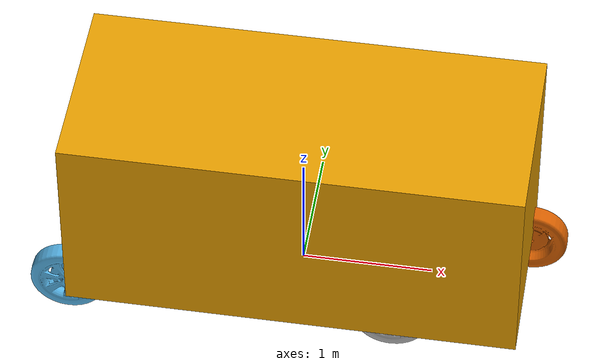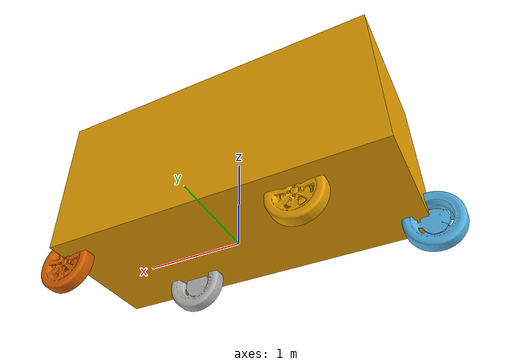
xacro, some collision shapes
<?xml version="1.0"?>
<robot name="atlascar2" xmlns:xacro="http://www.ros.org/wiki/xacro">
<!--
Robot model taken from http://wiki.ros.org/pr2_mechanism/Tutorials/SImple%20URDF-Controller%20Example
-->
  <xacro:include filename="atlascar2_wheel.urdf.xacro"/>

  <xacro:property name="deg_to_rad" value="0.01745329251994329577"/>

  <!-- Constants for robot dimensions -->
  <xacro:property name="length" value="3.475" />
  <xacro:property name="width" value="1.475" />
  <xacro:property name="height" value="1.61"/>
  <xacro:property name="wheel_radius" value="0.285" /> <!-- Link 1 -->
  <xacro:property name="thickness" value="0.145" /> <!-- Link 2 -->
<!--  we need two because the car isn't a square-->
  <xacro:property name="axel_offset_x" value="0.5" /> <!-- Space btw top of beam and the each joint -->
  <xacro:property name="axel_offset_y" value="0" /> <!-- Space btw top of beam and the each joint -->
  <xacro:property name="steer_offset" value="0.02" /> <!-- Link 1 -->

  <!-- Links: inertial,visual,collision -->
  <link name="base_link">
    <inertial>
      <!-- origin is relative -->
      <origin xyz="0 0 0" rpy="0 0 0"/>
      <mass value="2"/>
      <inertia ixx="1" ixy="0" ixz="0"
               iyy="1" iyz="0"
               izz="1"/>
    </inertial>
    <visual>
      <origin xyz=" ${length/2} ${-width/2 - 0.15} ${-wheel_radius + 0.05}" rpy="0 0 ${90*deg_to_rad}"/>
      <geometry>
        <mesh filename="$(find atlascar2_description)/meshes/atlascar2_nowheels.dae"/>
      </geometry>
    </visual>
    <collision>
      <!-- origin is relative -->
      <origin xyz=" 0 0 ${-wheel_radius + 0.05 + height/2}"/>
      <geometry>
        <box size="${length} ${width} ${height}"/>
      </geometry>
    </collision>
  </link>

  <link name="base_footprint">
    <collision>
      <origin xyz="0 0 0"/>
      <geometry>
        <sphere radius="0.00000001"/>
      </geometry>
    </collision>
  </link>
  <joint name="base_footprint_joint" type="fixed">
    <origin xyz="0 0 ${wheel_radius}" rpy="0 0 0"/>
    <child link="base_link"/>
    <parent link="base_footprint"/>
  </joint>

  <!-- joints for ackermann_steering_controller -->
  <xacro:front_steer name="front" parent="base" radius="${wheel_radius}" thickness="${thickness}"
      length="${length}" width="${width}" axel_offset="${axel_offset_x}" steer_height="${wheel_radius+steer_offset}">
    <origin xyz="${length/2-axel_offset_x} 0 0" rpy="${-90 * deg_to_rad} 0 ${90 * deg_to_rad}"/>
  </xacro:front_steer>
  <xacro:rear_wheel name="rear" parent="base" radius="${wheel_radius}" thickness="${thickness}">
    <origin xyz="${-length/2+axel_offset_x} 0 0" rpy="${-90 * deg_to_rad} 0 ${-90 * deg_to_rad}"/>
  </xacro:rear_wheel>

  <!-- Wheels -->
  <xacro:front_wheel_lr name="front_right" parent="base" radius="${wheel_radius}" thickness="${thickness}"
      length="${length}" width="${width}" axel_offset="${axel_offset_x}" right_left="1" steer_height="${wheel_radius+steer_offset}">
    <origin xyz="${length/2-axel_offset_x} ${width/2+axel_offset_y} 0" rpy="${-90 * deg_to_rad} 0 0"/>
  </xacro:front_wheel_lr>
  <xacro:front_wheel_lr name="front_left" parent="base" radius="${wheel_radius}" thickness="${thickness}"
      length="${length}" width="${width}" axel_offset="${axel_offset_x}" right_left="-1" steer_height="${wheel_radius+steer_offset}">
    <origin xyz="${length/2-axel_offset_x} ${-width/2-axel_offset_y} 0" rpy="${-90 * deg_to_rad} 0 0"/>
  </xacro:front_wheel_lr>
  <xacro:rear_wheel_lr name="rear_right" parent="base" radius="${wheel_radius}" right_left="1" thickness="${thickness}">
    <origin xyz="${-length/2+axel_offset_x - 0.05} ${width/2+axel_offset_y} 0" rpy="${-90 * deg_to_rad} 0 ${-90 * deg_to_rad}"/>
  </xacro:rear_wheel_lr>
  <xacro:rear_wheel_lr name="rear_left" parent="base" radius="${wheel_radius}" right_left="-1" thickness="${thickness}">
    <origin xyz="${-length/2+axel_offset_x - 0.05} ${-width/2-axel_offset_y} 0" rpy="${-90 * deg_to_rad} 0 ${90 * deg_to_rad}"/>
  </xacro:rear_wheel_lr>

    <!-- Gazebo plugin for ROS Control -->
  <gazebo>
    <plugin name="gazebo_ros_control" filename="libgazebo_ros_control.so">
      <robotSimType>steer_bot_hardware_gazebo/SteerBotHardwareGazebo</robotSimType>
    </plugin>
  </gazebo>

  <!-- Colour -->
  <gazebo reference="base_footprint">
    <material>Gazebo/Purple</material>
  </gazebo>

</robot>

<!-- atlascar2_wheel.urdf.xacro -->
<robot xmlns:xacro="http://www.ros.org/wiki/xacro">
  <xacro:property name="steer_radius" value="0.05" /> <!-- Link 1 -->
  <xacro:property name="steer_thickness" value="0.02" /> <!-- Link 1 -->
  <xacro:property name="steer_effort"   value="15.0"/>
  <xacro:property name="steer_velocity" value="5.0"/>
  <xacro:property name="mass" value="0.3"/>
  <xacro:property name="inertia" value="0.02"/>
  <xacro:property name="inertia_yy" value="0.002"/>
  <xacro:property name="damping" value="0"/>
  <xacro:property name="friction" value="0" />

  <xacro:macro name="front_steer" params="name parent radius thickness length width axel_offset steer_height *origin">
    <link name="${name}_steer_link">
      <inertial>
        <origin xyz="0 0 0" rpy="0 0 0"/>
        <mass value="${mass}"/>
        <inertia ixx="${inertia}" ixy="0" ixz="0" iyy="${inertia_yy}" iyz="0" izz="${inertia}"/>
      </inertial>
      <collision>
        <origin xyz="0 0 0" rpy="0 0 0"/>
        <geometry>
          <cylinder radius="${steer_radius}" length="${steer_thickness}"/>
        </geometry>
      </collision>
    </link>

    <joint name="${name}_steer_joint" type="revolute">
      <parent link="${parent}_link"/>
      <child link="${name}_steer_link"/>
      <origin xyz="${length/2-axel_offset} 0 ${steer_height}" rpy="0 0 0"/>
      <axis xyz="0 0 1"/>
      <limit effort="${steer_effort}"
             lower="${-180.0 * deg_to_rad}" upper="${180.0 * deg_to_rad}"
             velocity="${steer_velocity}"/>
      <dynamics damping="${damping}" friction="${friction}"/>
     </joint>

           <!-- Transmission is important to link the joints and the controller -->
    <transmission name="${name}_steer_joint_trans">
      <type>transmission_interface/SimpleTransmission</type>
      <actuator name="${name}_steer_joint_motor"/>
      <joint name="${name}_steer_joint">
        <hardwareInterface>hardware_interface/PositionJointInterface</hardwareInterface>
        <dynamics damping="${damping}" friction="0.0"/>
      </joint>
      <mechanicalReduction>1</mechanicalReduction>
      <motorTorqueConstant>1</motorTorqueConstant>
    </transmission>
    <gazebo reference="${name}_steer_link">
      <material>Gazebo/Yellow</material>
    </gazebo>
  </xacro:macro>

  <xacro:macro name="front_wheel_lr" params="name parent radius thickness length width axel_offset right_left steer_height *origin">
    <link name="${name}_steer_link">
      <inertial>
        <origin xyz="0 0 0" rpy="0 0 0"/>
        <mass value="${mass}"/>
        <inertia ixx="${inertia}" ixy="0" ixz="0" iyy="${inertia_yy}" iyz="0" izz="${inertia}"/>
      </inertial>
      <collision>
        <origin xyz="0 0 0" rpy="0 0 0"/>
        <axis xyz="${right_left * -1} 0 0"/>
        <geometry>
          <cylinder radius="${steer_radius}" length="${steer_thickness}"/>
        </geometry>
      </collision>
    </link>

    <joint name="${name}_steer_joint" type="revolute">
      <parent link="${parent}_link"/>
      <child link="${name}_steer_link"/>
      <origin xyz="${length/2-axel_offset_x} ${right_left*(width/2+axel_offset_y)} ${steer_height}" rpy="0 0 0"/>
      <!--xacro:insert_block name="origin"/-->
      <axis xyz="0 0 1"/>
      <dynamics damping="${damping}" friction="${friction}"/>
      <limit effort="${steer_effort}"
             lower="${-180.0 * deg_to_rad}" upper="${180.0 * deg_to_rad}"
             velocity="${steer_velocity}"/>
     </joint>

    <link name="${name}_wheel_link">
      <inertial>
        <origin xyz="0 0 0" rpy="0 0 0"/>
        <mass value="${mass}"/>
        <inertia ixx="${inertia}" ixy="0" ixz="0" iyy="${inertia_yy}" iyz="0" izz="${inertia}"/>
      </inertial>
      <visual>
        <origin xyz="0 0 0" rpy="0 0 0"/>
        <geometry>
          <mesh filename="$(find atlascar2_description)/meshes/atlascar2_wheel.dae"/>
        </geometry>
      </visual>
      <collision>
        <origin xyz="0 0 0" rpy="${-90 * deg_to_rad} 0 ${right_left * -90 * deg_to_rad}"/>-->
        <geometry>
          <cylinder radius="${wheel_radius}" length="${thickness}"/>
        </geometry>
      </collision>
    </link>

    <joint name="${name}_wheel_joint" type="continuous">
      <parent link="${name}_steer_link"/>
      <child link="${name}_wheel_link"/>
      <origin xyz="0 0 ${-steer_height}" rpy="${-90 * deg_to_rad} 0 ${right_left * -90 * deg_to_rad}"/>-->
      <axis xyz="${right_left * -1} 0 0"/>
      <dynamics damping="${damping}" friction="${friction}"/>
    </joint>

    <!-- Transmission is important to link the joints and the controller -->
    <transmission name="${name}_steer_joint_trans">
      <type>transmission_interface/SimpleTransmission</type>
      <actuator name="${name}_steer_joint_motor"/>
      <joint name="${name}_steer_joint">
        <hardwareInterface>hardware_interface/EffortJointInterface</hardwareInterface>
        <dynamics damping="${damping}" friction="${friction}"/>
      </joint>
      <mechanicalReduction>1</mechanicalReduction>
      <motorTorqueConstant>1</motorTorqueConstant>
    </transmission>
    <transmission name="${name}_wheel_joint_trans" >
      <type>transmission_interface/SimpleTransmission</type>
      <actuator name="${name}_wheel_joint_motor"/>
      <joint name="${name}_wheel_joint">
        <hardwareInterface>hardware_interface/EffortJointInterface</hardwareInterface>
        <dynamics damping="${damping}" friction="${friction}"/>
      </joint>
      <mechanicalReduction>1</mechanicalReduction>
      <motorTorqueConstant>1</motorTorqueConstant>
    </transmission>

  </xacro:macro>

  <xacro:macro name="rear_wheel" params="name parent radius thickness *origin">
    <link name="${name}_wheel_link">
      <inertial>
        <origin xyz="0 0 0" rpy="0 0 0"/>
        <mass value="${mass}"/>
        <inertia ixx="${inertia}" ixy="0" ixz="0" iyy="${inertia_yy}" iyz="0" izz="${inertia}"/>
      </inertial>
      <collision>
        <origin xyz="0 0 0" rpy="0 0 0"/>
        <geometry>
          <cylinder radius="${wheel_radius/100}" length="${thickness/100}"/>
        </geometry>
      </collision>
    </link>

    <joint name="${name}_wheel_joint" type="continuous">
      <parent link="${parent}_link"/>
      <child link="${name}_wheel_link"/>
      <xacro:insert_block name="origin"/>
      <axis xyz="1 0 0"/>
      <dynamics damping="${damping}" friction="${friction}"/>
    </joint>

    <!-- Transmission is important to link the joints and the controller -->
    <transmission name="${name}_wheel_joint_trans" >
      <type>transmission_interface/SimpleTransmission</type>
      <actuator name="${name}_wheel_joint_motor"/>
      <joint name="${name}_wheel_joint">
          <hardwareInterface>hardware_interface/VelocityJointInterface</hardwareInterface>
          <dynamics damping="${damping}" friction="${friction}"/>
      </joint>
      <mechanicalReduction>1</mechanicalReduction>
      <motorTorqueConstant>1</motorTorqueConstant>
    </transmission>
  </xacro:macro>

  <xacro:macro name="rear_wheel_lr" params="name parent radius right_left thickness *origin">
    <link name="${name}_wheel_link">
      <inertial>
        <origin xyz="0 0 0" rpy="0 0 0"/>
        <mass value="${mass}"/>
        <inertia ixx="${inertia}" ixy="0" ixz="0" iyy="${inertia_yy}" iyz="0" izz="${inertia}"/>
      </inertial>
      <visual>
        <origin xyz="0 0 0" rpy="0 0 0"/>
        <geometry>
            <mesh filename="$(find atlascar2_description)/meshes/atlascar2_wheel.dae"/>
        </geometry>
      </visual>
      <collision>
        <origin xyz="0 0 0" rpy="${-90 * deg_to_rad} 0 ${right_left * -90 * deg_to_rad}"/>-->
        <geometry>
          <cylinder radius="${wheel_radius}" length="${thickness}"/>
        </geometry>
      </collision>
    </link>

    <joint name="${name}_wheel_joint" type="continuous">
      <parent link="${parent}_link"/>
      <child link="${name}_wheel_link"/>
      <xacro:insert_block name="origin"/>
      <axis xyz="${right_left * -1} 0 0"/>
      <dynamics damping="${damping}" friction="${friction}"/>
    </joint>

    <!-- Transmission is important to link the joints and the controller -->
    <transmission name="${name}_wheel_joint_trans" >
      <type>transmission_interface/SimpleTransmission</type>
      <actuator name="${name}_wheel_joint_motor"/>
      <joint name="${name}_wheel_joint">
          <hardwareInterface>hardware_interface/EffortJointInterface</hardwareInterface>
          <dynamics damping="${damping}" friction="${friction}"/>
      </joint>
      <mechanicalReduction>1</mechanicalReduction>
      <motorTorqueConstant>1</motorTorqueConstant>
    </transmission>
  </xacro:macro>
</robot>
